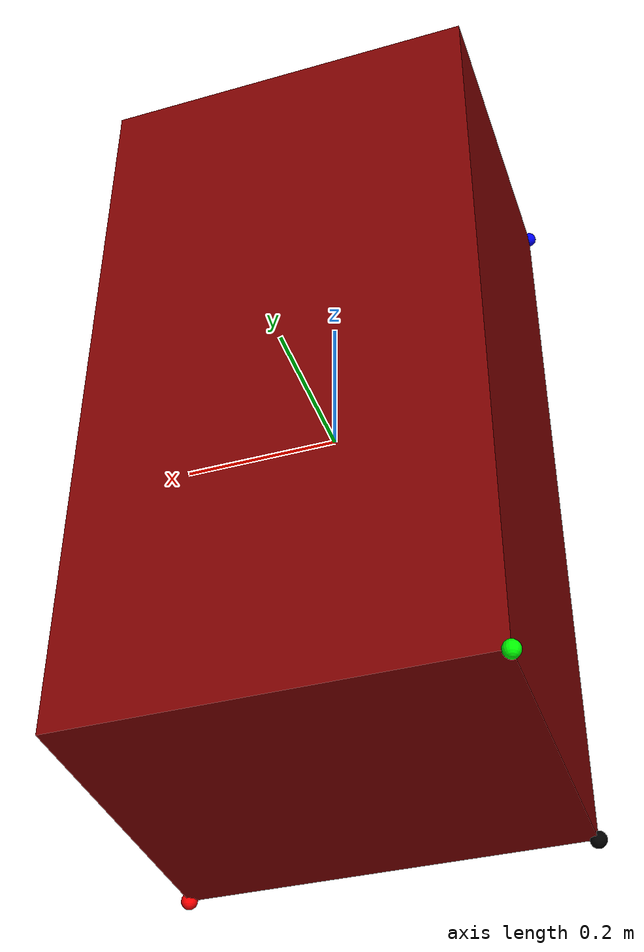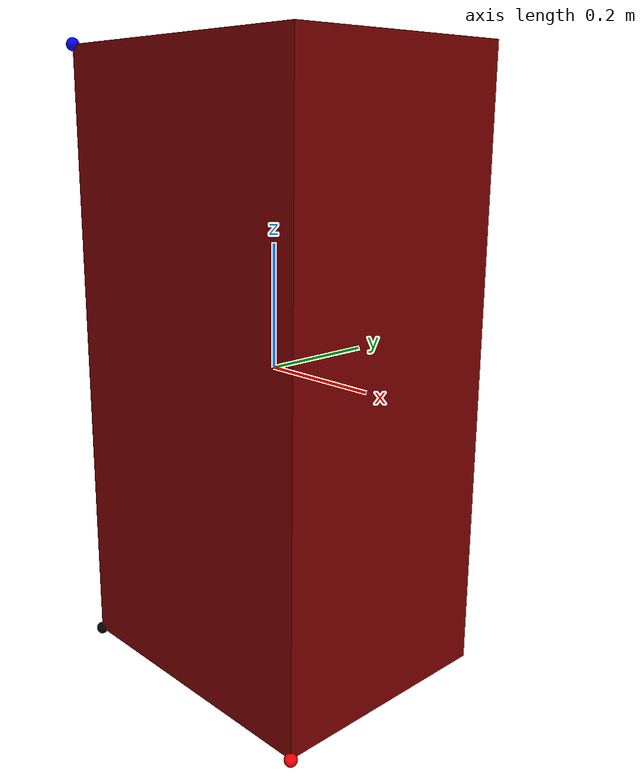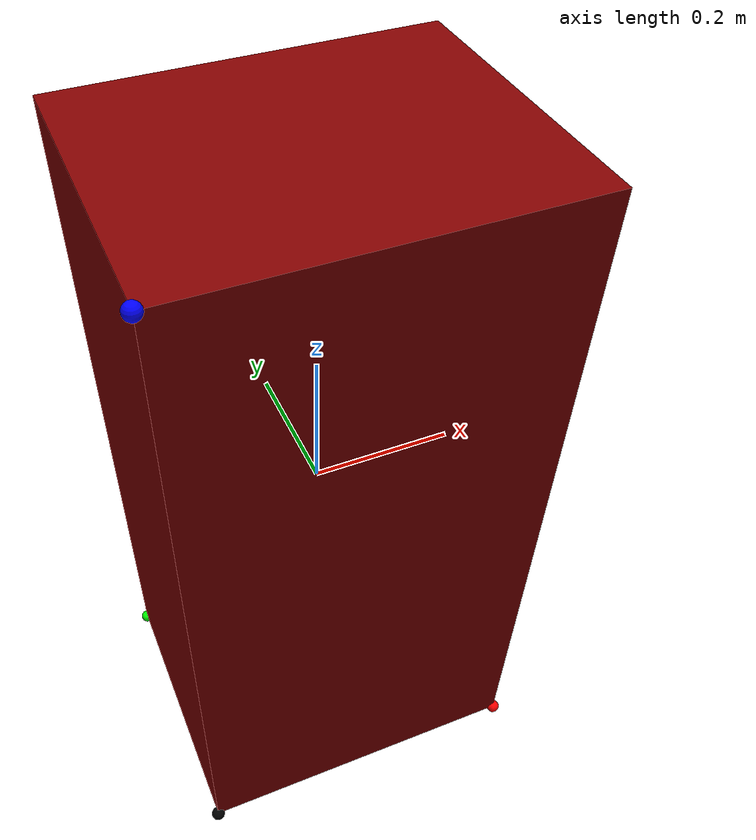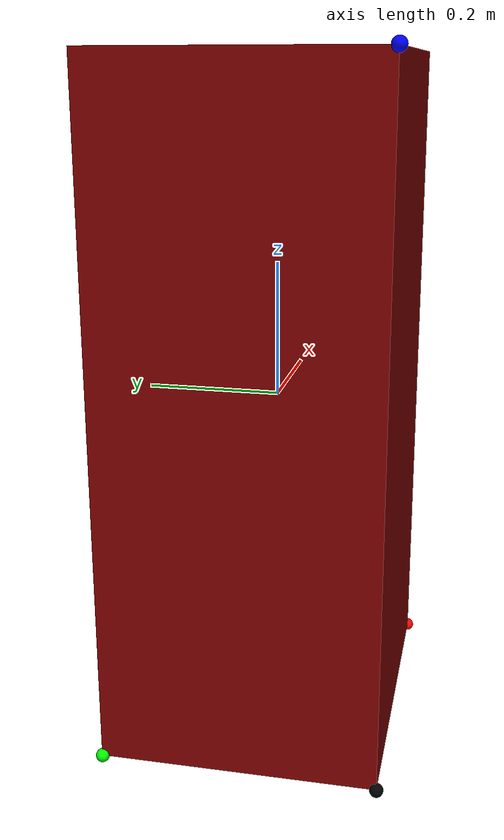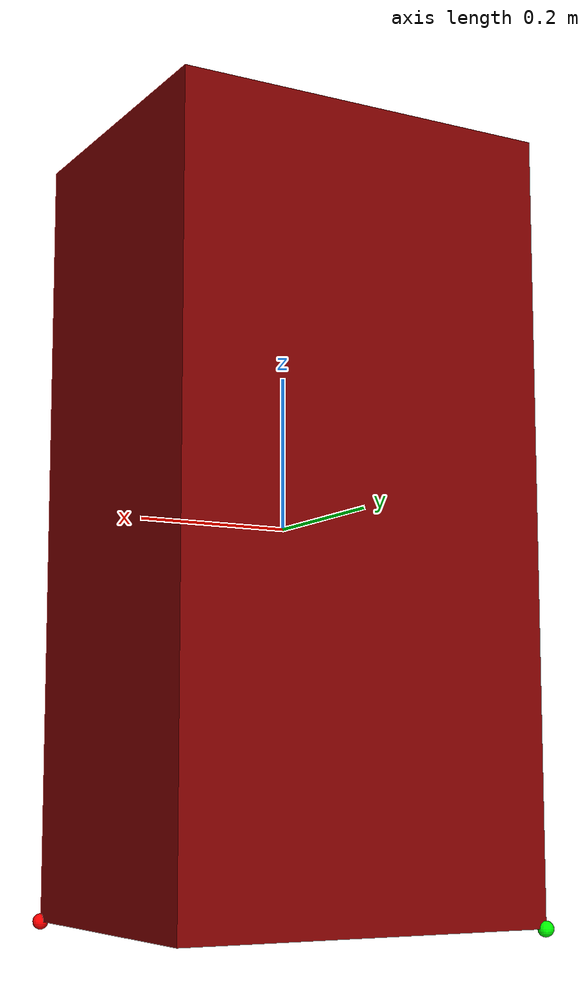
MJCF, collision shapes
<mujoco model="model">
  <asset>
    <texture file="visuals/image0.png" name="tex-model" type="2d" />
    <texture type="2d" name="image23" file="visuals/image23.png"/>
    <texture type="2d" name="image0" file="visuals/image0.png"/>
    <material name="model" reflectance="0.5" texrepeat="1 1" texture="tex-model" texuniform="false"/>
    <material name="TX_Fridge_3_1" texture="image23" specular="0.5" shininess="0.25"/>
    <material name="TX_Fridge_3_2" texture="image0" specular="0.5" shininess="0.25"/>
    <mesh file="visuals/model_0.obj" name="model_0_vis" scale="1 1 1"/>
    <mesh file="visuals/model_1.obj" name="model_1_vis" scale="1 1 1"/>
  </asset>
  <default>
    <default class="visual">
      <geom conaffinity="0" contype="0" group="1" type="mesh"/>
    </default>
    <default class="collision">
      <geom group="0" rgba="0.5 0 0 0.5"/>
    </default>
  </default>
  <worldbody>
    <body>
      <!-- exterior bounding box points -->
      <site rgba="0 0 0 1" size="0.01" pos="-0.2478547080790659 -0.193 -0.5" name="ext_p0"/>
      <site rgba="1 0 0 1" size="0.01" pos="0.2478547080790659 -0.193 -0.5" name="ext_px"/>
      <site rgba="0 1 0 1" size="0.01" pos="-0.2478547080790659 0.2119852968719209 -0.5" name="ext_py"/>
      <site rgba="0 0 1 1" size="0.01" pos="-0.2478547080790659 -0.193 0.5" name="ext_pz"/>
      <!-- interior bounding box points -->
      <body name="object">
        <geom solimp="0.998 0.998 0.001" solref="0.001 1" density="100" friction="0.95 0.3 0.1" type="mesh" mesh="model_0_vis" material="TX_Fridge_3_1" class="visual"/>
        <geom solimp="0.998 0.998 0.001" solref="0.001 1" density="100" friction="0.95 0.3 0.1" type="mesh" mesh="model_1_vis" material="TX_Fridge_3_2" class="visual"/>
        <geom class="collision" type="box" pos="0 0.01 0" size="0.2478547080790659 0.203 0.5"/>
      </body>
    </body>
  </worldbody>
</mujoco>
